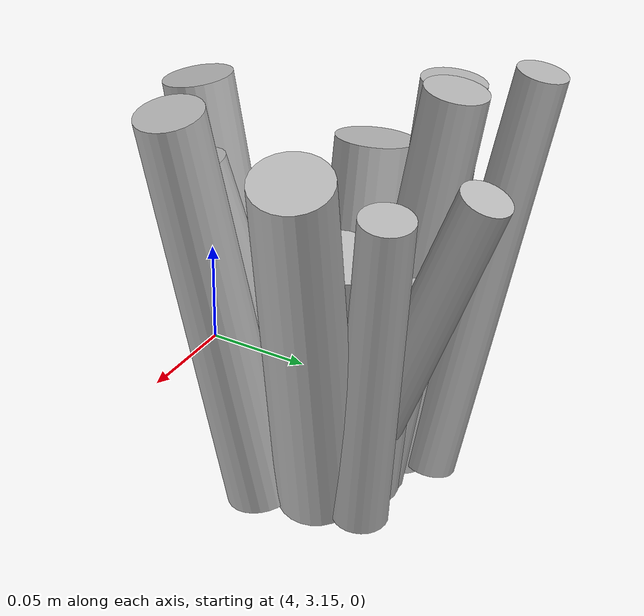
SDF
<sdf version="1.6">
 <world name="default">
  <model name="tussocks">
   <static>true</static>
   <link name="tuft121_0">
    <pose>4.0175 3.3068 0.0916 0 0.2420 2.3804</pose>
    <visual name="tuft121_0_v">
     <geometry><cylinder><radius>0.0118</radius><length>0.1990</length></cylinder></geometry>
     <material>
      <script>
       <uri>model://bushfire/materials/scripts</uri>
       <uri>model://bushfire/materials/textures</uri>
       <name>Bushfire/Foliage2</name>
      </script>
     </material>
    </visual>
   </link>
   <link name="tuft121_1">
    <pose>4.0310 3.2504 0.0691 0 0.2458 3.2733</pose>
    <visual name="tuft121_1_v">
     <geometry><cylinder><radius>0.0183</radius><length>0.1503</length></cylinder></geometry>
     <material>
      <script>
       <uri>model://bushfire/materials/scripts</uri>
       <uri>model://bushfire/materials/textures</uri>
       <name>Bushfire/Foliage2</name>
      </script>
     </material>
    </visual>
   </link>
   <link name="tuft121_2">
    <pose>4.0813 3.2249 0.0744 0 0.2734 5.0314</pose>
    <visual name="tuft121_2_v">
     <geometry><cylinder><radius>0.0128</radius><length>0.1618</length></cylinder></geometry>
     <material>
      <script>
       <uri>model://bushfire/materials/scripts</uri>
       <uri>model://bushfire/materials/textures</uri>
       <name>Bushfire/Foliage2</name>
      </script>
     </material>
    </visual>
   </link>
   <link name="tuft121_3">
    <pose>4.0891 3.2926 0.0745 0 0.1263 1.1174</pose>
    <visual name="tuft121_3_v">
     <geometry><cylinder><radius>0.0127</radius><length>0.1620</length></cylinder></geometry>
     <material>
      <script>
       <uri>model://bushfire/materials/scripts</uri>
       <uri>model://bushfire/materials/textures</uri>
       <name>Bushfire/Tussock</name>
      </script>
     </material>
    </visual>
   </link>
   <link name="tuft121_4">
    <pose>4.0767 3.2624 0.0624 0 0.2879 0.8754</pose>
    <visual name="tuft121_4_v">
     <geometry><cylinder><radius>0.0161</radius><length>0.1357</length></cylinder></geometry>
     <material>
      <script>
       <uri>model://bushfire/materials/scripts</uri>
       <uri>model://bushfire/materials/textures</uri>
       <name>Bushfire/Tussock</name>
      </script>
     </material>
    </visual>
   </link>
   <link name="tuft121_5">
    <pose>4.0238 3.2792 0.0862 0 0.1606 2.6798</pose>
    <visual name="tuft121_5_v">
     <geometry><cylinder><radius>0.0150</radius><length>0.1875</length></cylinder></geometry>
     <material>
      <script>
       <uri>model://bushfire/materials/scripts</uri>
       <uri>model://bushfire/materials/textures</uri>
       <name>Bushfire/Tussock</name>
      </script>
     </material>
    </visual>
   </link>
   <link name="tuft121_6">
    <pose>4.1043 3.2233 0.0918 0 0.1818 5.5105</pose>
    <visual name="tuft121_6_v">
     <geometry><cylinder><radius>0.0157</radius><length>0.1996</length></cylinder></geometry>
     <material>
      <script>
       <uri>model://bushfire/materials/scripts</uri>
       <uri>model://bushfire/materials/textures</uri>
       <name>Bushfire/Tussock</name>
      </script>
     </material>
    </visual>
   </link>
   <link name="tuft121_7">
    <pose>4.0623 3.2980 0.0767 0 0.3738 1.7763</pose>
    <visual name="tuft121_7_v">
     <geometry><cylinder><radius>0.0123</radius><length>0.1668</length></cylinder></geometry>
     <material>
      <script>
       <uri>model://bushfire/materials/scripts</uri>
       <uri>model://bushfire/materials/textures</uri>
       <name>Bushfire/Tussock</name>
      </script>
     </material>
    </visual>
   </link>
   <link name="tuft121_8">
    <pose>4.0638 3.2751 0.0505 0 0.1043 1.9299</pose>
    <visual name="tuft121_8_v">
     <geometry><cylinder><radius>0.0195</radius><length>0.1098</length></cylinder></geometry>
     <material>
      <script>
       <uri>model://bushfire/materials/scripts</uri>
       <uri>model://bushfire/materials/textures</uri>
       <name>Bushfire/Foliage2</name>
      </script>
     </material>
    </visual>
   </link>
   <link name="tuft121_9">
    <pose>4.1072 3.2699 0.0898 0 0.2764 0.3735</pose>
    <visual name="tuft121_9_v">
     <geometry><cylinder><radius>0.0186</radius><length>0.1952</length></cylinder></geometry>
     <material>
      <script>
       <uri>model://bushfire/materials/scripts</uri>
       <uri>model://bushfire/materials/textures</uri>
       <name>Bushfire/Tussock</name>
      </script>
     </material>
    </visual>
   </link>
   <link name="tuft121_10">
    <pose>4.0417 3.2843 0.0895 0 0.1915 2.3698</pose>
    <visual name="tuft121_10_v">
     <geometry><cylinder><radius>0.0148</radius><length>0.1946</length></cylinder></geometry>
     <material>
      <script>
       <uri>model://bushfire/materials/scripts</uri>
       <uri>model://bushfire/materials/textures</uri>
       <name>Bushfire/Foliage2</name>
      </script>
     </material>
    </visual>
   </link>
   <link name="tuft121_11">
    <pose>4.0560 3.1992 0.0830 0 0.2245 4.4520</pose>
    <visual name="tuft121_11_v">
     <geometry><cylinder><radius>0.0160</radius><length>0.1805</length></cylinder></geometry>
     <material>
      <script>
       <uri>model://bushfire/materials/scripts</uri>
       <uri>model://bushfire/materials/textures</uri>
       <name>Bushfire/Foliage2</name>
      </script>
     </material>
    </visual>
   </link>
  </model>
 </world>
</sdf>
